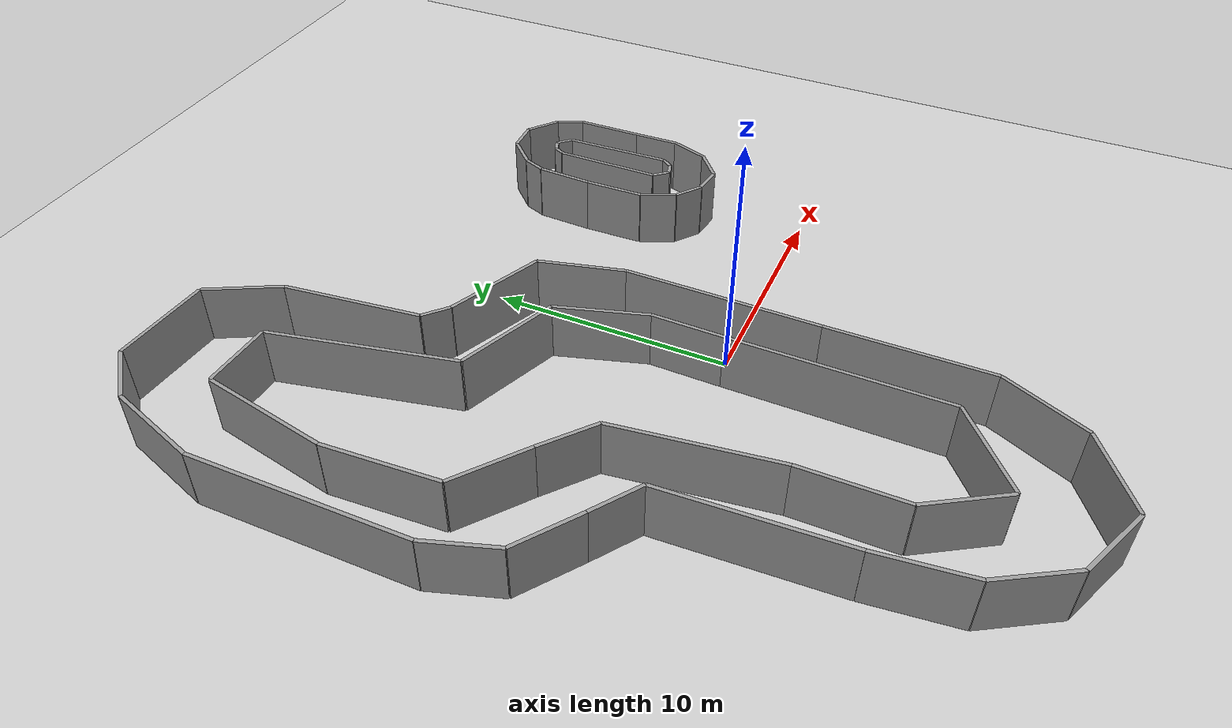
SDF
<sdf version="1.6">
 <world name="default">
  <model name="ground_plane">
   <static>1</static>
   <link name="link">
    <collision name="collision">
     <geometry><plane><normal>0 0 1</normal><size>100 100</size></plane></geometry>
     <surface><friction><ode><mu>100</mu><mu2>50</mu2></ode></friction></surface>
    </collision>
    <visual name="visual">
     <cast_shadows>0</cast_shadows>
     <geometry><plane><normal>0 0 1</normal><size>100 100</size></plane></geometry>
     <material>
      <script><uri>file://media/materials/scripts/gazebo.material</uri><name>Gazebo/Grey</name></script>
     </material>
    </visual>
   </link>
  </model>
  <model name="track2">
   <link name="wall_000">
    <collision name="wall_000_Collision">
     <geometry><box><size>4.375392 0.15 2.5</size></box></geometry>
     <pose>0 0 1.25 0 -0 0</pose>
    </collision>
    <visual name="wall_000_Visual">
     <pose>0 0 1.25 0 -0 0</pose>
     <geometry><box><size>4.375392 0.15 2.5</size></box></geometry>
     <material>
      <script><uri>file://media/materials/scripts/gazebo.material</uri><name>Gazebo/Grey</name></script>
      <ambient>1 1 1 1</ambient>
     </material>
     <meta><layer>0</layer></meta>
    </visual>
    <pose>-1.965100 9.167000 0 0 -0 -0.390624</pose>
   </link>
   <link name="wall_001">
    <collision name="wall_001_Collision">
     <geometry><box><size>1.246207 0.15 2.5</size></box></geometry>
     <pose>0 0 1.25 0 -0 0</pose>
    </collision>
    <visual name="wall_001_Visual">
     <pose>0 0 1.25 0 -0 0</pose>
     <geometry><box><size>1.246207 0.15 2.5</size></box></geometry>
     <material>
      <script><uri>file://media/materials/scripts/gazebo.material</uri><name>Gazebo/Grey</name></script>
      <ambient>1 1 1 1</ambient>
     </material>
     <meta><layer>0</layer></meta>
    </visual>
    <pose>-4.451000 10.417000 0 0 -0 -0.733173</pose>
   </link>
   <link name="wall_002">
    <collision name="wall_002_Collision">
     <geometry><box><size>5.872911 0.15 2.5</size></box></geometry>
     <pose>0 0 1.25 0 -0 0</pose>
    </collision>
    <visual name="wall_002_Visual">
     <pose>0 0 1.25 0 -0 0</pose>
     <geometry><box><size>5.872911 0.15 2.5</size></box></geometry>
     <material>
      <script><uri>file://media/materials/scripts/gazebo.material</uri><name>Gazebo/Grey</name></script>
      <ambient>1 1 1 1</ambient>
     </material>
     <meta><layer>0</layer></meta>
    </visual>
    <pose>-5.260000 13.750000 0 0 -0 -1.452693</pose>
   </link>
   <link name="wall_003">
    <collision name="wall_003_Collision">
     <geometry><box><size>3.309769 0.15 2.5</size></box></geometry>
     <pose>0 0 1.25 0 -0 0</pose>
    </collision>
    <visual name="wall_003_Visual">
     <pose>0 0 1.25 0 -0 0</pose>
     <geometry><box><size>3.309769 0.15 2.5</size></box></geometry>
     <material>
      <script><uri>file://media/materials/scripts/gazebo.material</uri><name>Gazebo/Grey</name></script>
      <ambient>1 1 1 1</ambient>
     </material>
     <meta><layer>0</layer></meta>
    </visual>
    <pose>-6.387000 18.125000 0 0 -0 -1.079311</pose>
   </link>
   <link name="wall_004">
    <collision name="wall_004_Collision">
     <geometry><box><size>4.169502 0.15 2.5</size></box></geometry>
     <pose>0 0 1.25 0 -0 0</pose>
    </collision>
    <visual name="wall_004_Visual">
     <pose>0 0 1.25 0 -0 0</pose>
     <geometry><box><size>4.169502 0.15 2.5</size></box></geometry>
     <material>
      <script><uri>file://media/materials/scripts/gazebo.material</uri><name>Gazebo/Grey</name></script>
      <ambient>1 1 1 1</ambient>
     </material>
     <meta><layer>0</layer></meta>
    </visual>
    <pose>-9.249000 19.709000 0 0 -0 -0.059995</pose>
   </link>
   <link name="wall_005">
    <collision name="wall_005_Collision">
     <geometry><box><size>2.490928 0.15 2.5</size></box></geometry>
     <pose>0 0 1.25 0 -0 0</pose>
    </collision>
    <visual name="wall_005_Visual">
     <pose>0 0 1.25 0 -0 0</pose>
     <geometry><box><size>2.490928 0.15 2.5</size></box></geometry>
     <material>
      <script><uri>file://media/materials/scripts/gazebo.material</uri><name>Gazebo/Grey</name></script>
      <ambient>1 1 1 1</ambient>
     </material>
     <meta><layer>0</layer></meta>
    </visual>
    <pose>-12.255000 19.000000 0 0 -0 0.733710</pose>
   </link>
   <link name="wall_006">
    <collision name="wall_006_Collision">
     <geometry><box><size>4.116790 0.15 2.5</size></box></geometry>
     <pose>0 0 1.25 0 -0 0</pose>
    </collision>
    <visual name="wall_006_Visual">
     <pose>0 0 1.25 0 -0 0</pose>
     <geometry><box><size>4.116790 0.15 2.5</size></box></geometry>
     <material>
      <script><uri>file://media/materials/scripts/gazebo.material</uri><name>Gazebo/Grey</name></script>
      <ambient>1 1 1 1</ambient>
     </material>
     <meta><layer>0</layer></meta>
    </visual>
    <pose>-13.815000 16.208000 0 0 -0 1.257188</pose>
   </link>
   <link name="wall_007">
    <collision name="wall_007_Collision">
     <geometry><box><size>9.000174 0.15 2.5</size></box></geometry>
     <pose>0 0 1.25 0 -0 0</pose>
    </collision>
    <visual name="wall_007_Visual">
     <pose>0 0 1.25 0 -0 0</pose>
     <geometry><box><size>9.000174 0.15 2.5</size></box></geometry>
     <material>
      <script><uri>file://media/materials/scripts/gazebo.material</uri><name>Gazebo/Grey</name></script>
      <ambient>1 1 1 1</ambient>
     </material>
     <meta><layer>0</layer></meta>
    </visual>
    <pose>-14.422000 9.750000 0 0 -0 1.577018</pose>
   </link>
   <link name="wall_008">
    <collision name="wall_008_Collision">
     <geometry><box><size>2.901719 0.15 2.5</size></box></geometry>
     <pose>0 0 1.25 0 -0 0</pose>
    </collision>
    <visual name="wall_008_Visual">
     <pose>0 0 1.25 0 -0 0</pose>
     <geometry><box><size>2.901719 0.15 2.5</size></box></geometry>
     <material>
      <script><uri>file://media/materials/scripts/gazebo.material</uri><name>Gazebo/Grey</name></script>
      <ambient>1 1 1 1</ambient>
     </material>
     <meta><layer>0</layer></meta>
    </visual>
    <pose>-13.931000 3.875000 0 0 -0 1.895598</pose>
   </link>
   <link name="wall_009">
    <collision name="wall_009_Collision">
     <geometry><box><size>2.897319 0.15 2.5</size></box></geometry>
     <pose>0 0 1.25 0 -0 0</pose>
    </collision>
    <visual name="wall_009_Visual">
     <pose>0 0 1.25 0 -0 0</pose>
     <geometry><box><size>2.897319 0.15 2.5</size></box></geometry>
     <material>
      <script><uri>file://media/materials/scripts/gazebo.material</uri><name>Gazebo/Grey</name></script>
      <ambient>1 1 1 1</ambient>
     </material>
     <meta><layer>0</layer></meta>
    </visual>
    <pose>-12.283000 1.666700 0 0 -0 2.528718</pose>
   </link>
   <link name="wall_010">
    <collision name="wall_010_Collision">
     <geometry><box><size>2.232711 0.15 2.5</size></box></geometry>
     <pose>0 0 1.25 0 -0 0</pose>
    </collision>
    <visual name="wall_010_Visual">
     <pose>0 0 1.25 0 -0 0</pose>
     <geometry><box><size>2.232711 0.15 2.5</size></box></geometry>
     <material>
      <script><uri>file://media/materials/scripts/gazebo.material</uri><name>Gazebo/Grey</name></script>
      <ambient>1 1 1 1</ambient>
     </material>
     <meta><layer>0</layer></meta>
    </visual>
    <pose>-10.173000 0.208400 0 0 -0 2.547379</pose>
   </link>
   <link name="wall_011">
    <collision name="wall_011_Collision">
     <geometry><box><size>7.257652 0.15 2.5</size></box></geometry>
     <pose>0 0 1.25 0 -0 0</pose>
    </collision>
    <visual name="wall_011_Visual">
     <pose>0 0 1.25 0 -0 0</pose>
     <geometry><box><size>7.257652 0.15 2.5</size></box></geometry>
     <material>
      <script><uri>file://media/materials/scripts/gazebo.material</uri><name>Gazebo/Grey</name></script>
      <ambient>1 1 1 1</ambient>
     </material>
     <meta><layer>0</layer></meta>
    </visual>
    <pose>-9.075000 -4.041300 0 0 -0 1.618488</pose>
   </link>
   <link name="wall_012">
    <collision name="wall_012_Collision">
     <geometry><box><size>3.606698 0.15 2.5</size></box></geometry>
     <pose>0 0 1.25 0 -0 0</pose>
    </collision>
    <visual name="wall_012_Visual">
     <pose>0 0 1.25 0 -0 0</pose>
     <geometry><box><size>3.606698 0.15 2.5</size></box></geometry>
     <material>
      <script><uri>file://media/materials/scripts/gazebo.material</uri><name>Gazebo/Grey</name></script>
      <ambient>1 1 1 1</ambient>
     </material>
     <meta><layer>0</layer></meta>
    </visual>
    <pose>-8.700000 -9.458000 0 0 -0 1.683046</pose>
   </link>
   <link name="wall_013">
    <collision name="wall_013_Collision">
     <geometry><box><size>3.221519 0.15 2.5</size></box></geometry>
     <pose>0 0 1.25 0 -0 0</pose>
    </collision>
    <visual name="wall_013_Visual">
     <pose>0 0 1.25 0 -0 0</pose>
     <geometry><box><size>3.221519 0.15 2.5</size></box></geometry>
     <material>
      <script><uri>file://media/materials/scripts/gazebo.material</uri><name>Gazebo/Grey</name></script>
      <ambient>1 1 1 1</ambient>
     </material>
     <meta><layer>0</layer></meta>
    </visual>
    <pose>-7.659000 -12.625000 0 0 -0 2.118669</pose>
   </link>
   <link name="wall_014">
    <collision name="wall_014_Collision">
     <geometry><box><size>3.286879 0.15 2.5</size></box></geometry>
     <pose>0 0 1.25 0 -0 0</pose>
    </collision>
    <visual name="wall_014_Visual">
     <pose>0 0 1.25 0 -0 0</pose>
     <geometry><box><size>3.286879 0.15 2.5</size></box></geometry>
     <material>
      <script><uri>file://media/materials/scripts/gazebo.material</uri><name>Gazebo/Grey</name></script>
      <ambient>1 1 1 1</ambient>
     </material>
     <meta><layer>0</layer></meta>
    </visual>
    <pose>-5.318000 -14.667000 0 0 -0 2.723677</pose>
   </link>
   <link name="wall_015">
    <collision name="wall_015_Collision">
     <geometry><box><size>3.664438 0.15 2.5</size></box></geometry>
     <pose>0 0 1.25 0 -0 0</pose>
    </collision>
    <visual name="wall_015_Visual">
     <pose>0 0 1.25 0 -0 0</pose>
     <geometry><box><size>3.664438 0.15 2.5</size></box></geometry>
     <material>
      <script><uri>file://media/materials/scripts/gazebo.material</uri><name>Gazebo/Grey</name></script>
      <ambient>1 1 1 1</ambient>
     </material>
     <meta><layer>0</layer></meta>
    </visual>
    <pose>-2.254800 -14.375000 0 0 -0 -2.590746</pose>
   </link>
   <link name="wall_016">
    <collision name="wall_016_Collision">
     <geometry><box><size>3.704247 0.15 2.5</size></box></geometry>
     <pose>0 0 1.25 0 -0 0</pose>
    </collision>
    <visual name="wall_016_Visual">
     <pose>0 0 1.25 0 -0 0</pose>
     <geometry><box><size>3.704247 0.15 2.5</size></box></geometry>
     <material>
      <script><uri>file://media/materials/scripts/gazebo.material</uri><name>Gazebo/Grey</name></script>
      <ambient>1 1 1 1</ambient>
     </material>
     <meta><layer>0</layer></meta>
    </visual>
    <pose>0.115600 -11.750000 0 0 -0 -2.022950</pose>
   </link>
   <link name="wall_017">
    <collision name="wall_017_Collision">
     <geometry><box><size>6.668000 0.15 2.5</size></box></geometry>
     <pose>0 0 1.25 0 -0 0</pose>
    </collision>
    <visual name="wall_017_Visual">
     <pose>0 0 1.25 0 -0 0</pose>
     <geometry><box><size>6.668000 0.15 2.5</size></box></geometry>
     <material>
      <script><uri>file://media/materials/scripts/gazebo.material</uri><name>Gazebo/Grey</name></script>
      <ambient>1 1 1 1</ambient>
     </material>
     <meta><layer>0</layer></meta>
    </visual>
    <pose>0.924800 -6.750000 0 0 -0 -1.570796</pose>
   </link>
   <link name="wall_018">
    <collision name="wall_018_Collision">
     <geometry><box><size>8.166205 0.15 2.5</size></box></geometry>
     <pose>0 0 1.25 0 -0 0</pose>
    </collision>
    <visual name="wall_018_Visual">
     <pose>0 0 1.25 0 -0 0</pose>
     <geometry><box><size>8.166205 0.15 2.5</size></box></geometry>
     <material>
      <script><uri>file://media/materials/scripts/gazebo.material</uri><name>Gazebo/Grey</name></script>
      <ambient>1 1 1 1</ambient>
     </material>
     <meta><layer>0</layer></meta>
    </visual>
    <pose>0.953700 0.667000 0 0 -0 -1.577874</pose>
   </link>
   <link name="wall_019">
    <collision name="wall_019_Collision">
     <geometry><box><size>3.701393 0.15 2.5</size></box></geometry>
     <pose>0 0 1.25 0 -0 0</pose>
    </collision>
    <visual name="wall_019_Visual">
     <pose>0 0 1.25 0 -0 0</pose>
     <geometry><box><size>3.701393 0.15 2.5</size></box></geometry>
     <material>
      <script><uri>file://media/materials/scripts/gazebo.material</uri><name>Gazebo/Grey</name></script>
      <ambient>1 1 1 1</ambient>
     </material>
     <meta><layer>0</layer></meta>
    </visual>
    <pose>0.520200 6.542000 0 0 -0 -1.318269</pose>
   </link>
   <link name="wall_020">
    <collision name="wall_020_Collision">
     <geometry><box><size>4.507489 0.15 2.5</size></box></geometry>
     <pose>0 0 1.25 0 -0 0</pose>
    </collision>
    <visual name="wall_020_Visual">
     <pose>0 0 1.25 0 -0 0</pose>
     <geometry><box><size>4.507489 0.15 2.5</size></box></geometry>
     <material>
      <script><uri>file://media/materials/scripts/gazebo.material</uri><name>Gazebo/Grey</name></script>
      <ambient>1 1 1 1</ambient>
     </material>
     <meta><layer>0</layer></meta>
    </visual>
    <pose>-4.422000 7.292000 0 0 -0 -0.359082</pose>
   </link>
   <link name="wall_021">
    <collision name="wall_021_Collision">
     <geometry><box><size>7.847072 0.15 2.5</size></box></geometry>
     <pose>0 0 1.25 0 -0 0</pose>
    </collision>
    <visual name="wall_021_Visual">
     <pose>0 0 1.25 0 -0 0</pose>
     <geometry><box><size>7.847072 0.15 2.5</size></box></geometry>
     <material>
      <script><uri>file://media/materials/scripts/gazebo.material</uri><name>Gazebo/Grey</name></script>
      <ambient>1 1 1 1</ambient>
     </material>
     <meta><layer>0</layer></meta>
    </visual>
    <pose>-7.370000 11.917000 0 0 -0 -1.355555</pose>
   </link>
   <link name="wall_022">
    <collision name="wall_022_Collision">
     <geometry><box><size>2.949197 0.15 2.5</size></box></geometry>
     <pose>0 0 1.25 0 -0 0</pose>
    </collision>
    <visual name="wall_022_Visual">
     <pose>0 0 1.25 0 -0 0</pose>
     <geometry><box><size>2.949197 0.15 2.5</size></box></geometry>
     <material>
      <script><uri>file://media/materials/scripts/gazebo.material</uri><name>Gazebo/Grey</name></script>
      <ambient>1 1 1 1</ambient>
     </material>
     <meta><layer>0</layer></meta>
    </visual>
    <pose>-9.682000 15.792000 0 0 -0 -0.028486</pose>
   </link>
   <link name="wall_023">
    <collision name="wall_023_Collision">
     <geometry><box><size>5.516913 0.15 2.5</size></box></geometry>
     <pose>0 0 1.25 0 -0 0</pose>
    </collision>
    <visual name="wall_023_Visual">
     <pose>0 0 1.25 0 -0 0</pose>
     <geometry><box><size>5.516913 0.15 2.5</size></box></geometry>
     <material>
      <script><uri>file://media/materials/scripts/gazebo.material</uri><name>Gazebo/Grey</name></script>
      <ambient>1 1 1 1</ambient>
     </material>
     <meta><layer>0</layer></meta>
    </visual>
    <pose>-11.676000 13.125000 0 0 -0 1.381150</pose>
   </link>
   <link name="wall_024">
    <collision name="wall_024_Collision">
     <geometry><box><size>4.758723 0.15 2.5</size></box></geometry>
     <pose>0 0 1.25 0 -0 0</pose>
    </collision>
    <visual name="wall_024_Visual">
     <pose>0 0 1.25 0 -0 0</pose>
     <geometry><box><size>4.758723 0.15 2.5</size></box></geometry>
     <material>
      <script><uri>file://media/materials/scripts/gazebo.material</uri><name>Gazebo/Grey</name></script>
      <ambient>1 1 1 1</ambient>
     </material>
     <meta><layer>0</layer></meta>
    </visual>
    <pose>-12.052000 8.041000 0 0 -0 1.631354</pose>
   </link>
   <link name="wall_025">
    <collision name="wall_025_Collision">
     <geometry><box><size>3.328002 0.15 2.5</size></box></geometry>
     <pose>0 0 1.25 0 -0 0</pose>
    </collision>
    <visual name="wall_025_Visual">
     <pose>0 0 1.25 0 -0 0</pose>
     <geometry><box><size>3.328002 0.15 2.5</size></box></geometry>
     <material>
      <script><uri>file://media/materials/scripts/gazebo.material</uri><name>Gazebo/Grey</name></script>
      <ambient>1 1 1 1</ambient>
     </material>
     <meta><layer>0</layer></meta>
    </visual>
    <pose>-10.578000 4.666000 0 0 -0 2.496890</pose>
   </link>
   <link name="wall_026">
    <collision name="wall_026_Collision">
     <geometry><box><size>2.521908 0.15 2.5</size></box></geometry>
     <pose>0 0 1.25 0 -0 0</pose>
    </collision>
    <visual name="wall_026_Visual">
     <pose>0 0 1.25 0 -0 0</pose>
     <geometry><box><size>2.521908 0.15 2.5</size></box></geometry>
     <material>
      <script><uri>file://media/materials/scripts/gazebo.material</uri><name>Gazebo/Grey</name></script>
      <ambient>1 1 1 1</ambient>
     </material>
     <meta><layer>0</layer></meta>
    </visual>
    <pose>-8.266000 2.875000 0 0 -0 2.463508</pose>
   </link>
   <link name="wall_027">
    <collision name="wall_027_Collision">
     <geometry><box><size>6.640970 0.15 2.5</size></box></geometry>
     <pose>0 0 1.25 0 -0 0</pose>
    </collision>
    <visual name="wall_027_Visual">
     <pose>0 0 1.25 0 -0 0</pose>
     <geometry><box><size>6.640970 0.15 2.5</size></box></geometry>
     <material>
      <script><uri>file://media/materials/scripts/gazebo.material</uri><name>Gazebo/Grey</name></script>
      <ambient>1 1 1 1</ambient>
     </material>
     <meta><layer>0</layer></meta>
    </visual>
    <pose>-6.850000 -1.208000 0 0 -0 1.701875</pose>
   </link>
   <link name="wall_028">
    <collision name="wall_028_Collision">
     <geometry><box><size>4.166000 0.15 2.5</size></box></geometry>
     <pose>0 0 1.25 0 -0 0</pose>
    </collision>
    <visual name="wall_028_Visual">
     <pose>0 0 1.25 0 -0 0</pose>
     <geometry><box><size>4.166000 0.15 2.5</size></box></geometry>
     <material>
      <script><uri>file://media/materials/scripts/gazebo.material</uri><name>Gazebo/Grey</name></script>
      <ambient>1 1 1 1</ambient>
     </material>
     <meta><layer>0</layer></meta>
    </visual>
    <pose>-6.416000 -6.583000 0 0 -0 1.570796</pose>
   </link>
   <link name="wall_029">
    <collision name="wall_029_Collision">
     <geometry><box><size>3.455029 0.15 2.5</size></box></geometry>
     <pose>0 0 1.25 0 -0 0</pose>
    </collision>
    <visual name="wall_029_Visual">
     <pose>0 0 1.25 0 -0 0</pose>
     <geometry><box><size>3.455029 0.15 2.5</size></box></geometry>
     <material>
      <script><uri>file://media/materials/scripts/gazebo.material</uri><name>Gazebo/Grey</name></script>
      <ambient>1 1 1 1</ambient>
     </material>
     <meta><layer>0</layer></meta>
    </visual>
    <pose>-5.491000 -10.125000 0 0 -0 2.135838</pose>
   </link>
   <link name="wall_030">
    <collision name="wall_030_Collision">
     <geometry><box><size>4.135586 0.15 2.5</size></box></geometry>
     <pose>0 0 1.25 0 -0 0</pose>
    </collision>
    <visual name="wall_030_Visual">
     <pose>0 0 1.25 0 -0 0</pose>
     <geometry><box><size>4.135586 0.15 2.5</size></box></geometry>
     <material>
      <script><uri>file://media/materials/scripts/gazebo.material</uri><name>Gazebo/Grey</name></script>
      <ambient>1 1 1 1</ambient>
     </material>
     <meta><layer>0</layer></meta>
    </visual>
    <pose>-2.918800 -10.334000 0 0 -0 -2.492443</pose>
   </link>
   <link name="wall_031">
    <collision name="wall_031_Collision">
     <geometry><box><size>8.834189 0.15 2.5</size></box></geometry>
     <pose>0 0 1.25 0 -0 0</pose>
    </collision>
    <visual name="wall_031_Visual">
     <pose>0 0 1.25 0 -0 0</pose>
     <geometry><box><size>8.834189 0.15 2.5</size></box></geometry>
     <material>
      <script><uri>file://media/materials/scripts/gazebo.material</uri><name>Gazebo/Grey</name></script>
      <ambient>1 1 1 1</ambient>
     </material>
     <meta><layer>0</layer></meta>
    </visual>
    <pose>-1.242700 -4.667000 0 0 -0 -1.577339</pose>
   </link>
   <link name="wall_032">
    <collision name="wall_032_Collision">
     <geometry><box><size>3.000557 0.15 2.5</size></box></geometry>
     <pose>0 0 1.25 0 -0 0</pose>
    </collision>
    <visual name="wall_032_Visual">
     <pose>0 0 1.25 0 -0 0</pose>
     <geometry><box><size>3.000557 0.15 2.5</size></box></geometry>
     <material>
      <script><uri>file://media/materials/scripts/gazebo.material</uri><name>Gazebo/Grey</name></script>
      <ambient>1 1 1 1</ambient>
     </material>
     <meta><layer>0</layer></meta>
    </visual>
    <pose>-1.184900 1.250000 0 0 -0 -1.590061</pose>
   </link>
   <link name="wall_033">
    <collision name="wall_033_Collision">
     <geometry><box><size>3.924135 0.15 2.5</size></box></geometry>
     <pose>0 0 1.25 0 -0 0</pose>
    </collision>
    <visual name="wall_033_Visual">
     <pose>0 0 1.25 0 -0 0</pose>
     <geometry><box><size>3.924135 0.15 2.5</size></box></geometry>
     <material>
      <script><uri>file://media/materials/scripts/gazebo.material</uri><name>Gazebo/Grey</name></script>
      <ambient>1 1 1 1</ambient>
     </material>
     <meta><layer>0</layer></meta>
    </visual>
    <pose>-1.734000 4.625000 0 0 -0 -1.271773</pose>
   </link>
   <link name="wall_034">
    <collision name="wall_034_Collision">
     <geometry><box><size>1.195634 0.15 2.5</size></box></geometry>
     <pose>0 0 1.25 0 -0 0</pose>
    </collision>
    <visual name="wall_034_Visual">
     <pose>0 0 1.25 0 -0 0</pose>
     <geometry><box><size>1.195634 0.15 2.5</size></box></geometry>
     <material>
      <script><uri>file://media/materials/scripts/gazebo.material</uri><name>Gazebo/Grey</name></script>
      <ambient>1 1 1 1</ambient>
     </material>
     <meta><layer>0</layer></meta>
    </visual>
    <pose>10.586740 11.912500 0 0 -0 -1.157576</pose>
   </link>
   <link name="wall_035">
    <collision name="wall_035_Collision">
     <geometry><box><size>1.548632 0.15 2.5</size></box></geometry>
     <pose>0 0 1.25 0 -0 0</pose>
    </collision>
    <visual name="wall_035_Visual">
     <pose>0 0 1.25 0 -0 0</pose>
     <geometry><box><size>1.548632 0.15 2.5</size></box></geometry>
     <material>
      <script><uri>file://media/materials/scripts/gazebo.material</uri><name>Gazebo/Grey</name></script>
      <ambient>1 1 1 1</ambient>
     </material>
     <meta><layer>0</layer></meta>
    </visual>
    <pose>9.733240 12.932500 0 0 -0 -0.656333</pose>
   </link>
   <link name="wall_036">
    <collision name="wall_036_Collision">
     <geometry><box><size>1.362576 0.15 2.5</size></box></geometry>
     <pose>0 0 1.25 0 -0 0</pose>
    </collision>
    <visual name="wall_036_Visual">
     <pose>0 0 1.25 0 -0 0</pose>
     <geometry><box><size>1.362576 0.15 2.5</size></box></geometry>
     <material>
      <script><uri>file://media/materials/scripts/gazebo.material</uri><name>Gazebo/Grey</name></script>
      <ambient>1 1 1 1</ambient>
     </material>
     <meta><layer>0</layer></meta>
    </visual>
    <pose>8.440000 13.360000 0 0 -0 0.066100</pose>
   </link>
   <link name="wall_037">
    <collision name="wall_037_Collision">
     <geometry><box><size>1.558364 0.15 2.5</size></box></geometry>
     <pose>0 0 1.25 0 -0 0</pose>
    </collision>
    <visual name="wall_037_Visual">
     <pose>0 0 1.25 0 -0 0</pose>
     <geometry><box><size>1.558364 0.15 2.5</size></box></geometry>
     <material>
      <script><uri>file://media/materials/scripts/gazebo.material</uri><name>Gazebo/Grey</name></script>
      <ambient>1 1 1 1</ambient>
     </material>
     <meta><layer>0</layer></meta>
    </visual>
    <pose>7.213300 12.760000 0 0 -0 0.792749</pose>
   </link>
   <link name="wall_038">
    <collision name="wall_038_Collision">
     <geometry><box><size>0.983273 0.15 2.5</size></box></geometry>
     <pose>0 0 1.25 0 -0 0</pose>
    </collision>
    <visual name="wall_038_Visual">
     <pose>0 0 1.25 0 -0 0</pose>
     <geometry><box><size>0.983273 0.15 2.5</size></box></geometry>
     <material>
      <script><uri>file://media/materials/scripts/gazebo.material</uri><name>Gazebo/Grey</name></script>
      <ambient>1 1 1 1</ambient>
     </material>
     <meta><layer>0</layer></meta>
    </visual>
    <pose>6.486400 11.747500 0 0 -0 1.195956</pose>
   </link>
   <link name="wall_039">
    <collision name="wall_039_Collision">
     <geometry><box><size>2.372378 0.15 2.5</size></box></geometry>
     <pose>0 0 1.25 0 -0 0</pose>
    </collision>
    <visual name="wall_039_Visual">
     <pose>0 0 1.25 0 -0 0</pose>
     <geometry><box><size>2.372378 0.15 2.5</size></box></geometry>
     <material>
      <script><uri>file://media/materials/scripts/gazebo.material</uri><name>Gazebo/Grey</name></script>
      <ambient>1 1 1 1</ambient>
     </material>
     <meta><layer>0</layer></meta>
    </visual>
    <pose>6.253300 10.105000 0 0 -0 1.526016</pose>
   </link>
   <link name="wall_040">
    <collision name="wall_040_Collision">
     <geometry><box><size>2.535562 0.15 2.5</size></box></geometry>
     <pose>0 0 1.25 0 -0 0</pose>
    </collision>
    <visual name="wall_040_Visual">
     <pose>0 0 1.25 0 -0 0</pose>
     <geometry><box><size>2.535562 0.15 2.5</size></box></geometry>
     <material>
      <script><uri>file://media/materials/scripts/gazebo.material</uri><name>Gazebo/Grey</name></script>
      <ambient>1 1 1 1</ambient>
     </material>
     <meta><layer>0</layer></meta>
    </visual>
    <pose>6.226900 7.652500 0 0 -0 1.591858</pose>
   </link>
   <link name="wall_041">
    <collision name="wall_041_Collision">
     <geometry><box><size>1.561958 0.15 2.5</size></box></geometry>
     <pose>0 0 1.25 0 -0 0</pose>
    </collision>
    <visual name="wall_041_Visual">
     <pose>0 0 1.25 0 -0 0</pose>
     <geometry><box><size>1.561958 0.15 2.5</size></box></geometry>
     <material>
      <script><uri>file://media/materials/scripts/gazebo.material</uri><name>Gazebo/Grey</name></script>
      <ambient>1 1 1 1</ambient>
     </material>
     <meta><layer>0</layer></meta>
    </visual>
    <pose>6.573400 5.672500 0 0 -0 1.992687</pose>
   </link>
   <link name="wall_042">
    <collision name="wall_042_Collision">
     <geometry><box><size>1.280286 0.15 2.5</size></box></geometry>
     <pose>0 0 1.25 0 -0 0</pose>
    </collision>
    <visual name="wall_042_Visual">
     <pose>0 0 1.25 0 -0 0</pose>
     <geometry><box><size>1.280286 0.15 2.5</size></box></geometry>
     <material>
      <script><uri>file://media/materials/scripts/gazebo.material</uri><name>Gazebo/Grey</name></script>
      <ambient>1 1 1 1</ambient>
     </material>
     <meta><layer>0</layer></meta>
    </visual>
    <pose>7.406500 4.577500 0 0 -0 2.501185</pose>
   </link>
   <link name="wall_043">
    <collision name="wall_043_Collision">
     <geometry><box><size>1.236135 0.15 2.5</size></box></geometry>
     <pose>0 0 1.25 0 -0 0</pose>
    </collision>
    <visual name="wall_043_Visual">
     <pose>0 0 1.25 0 -0 0</pose>
     <geometry><box><size>1.236135 0.15 2.5</size></box></geometry>
     <material>
      <script><uri>file://media/materials/scripts/gazebo.material</uri><name>Gazebo/Grey</name></script>
      <ambient>1 1 1 1</ambient>
     </material>
     <meta><layer>0</layer></meta>
    </visual>
    <pose>8.533300 4.120000 0 0 -0 3.019947</pose>
   </link>
   <link name="wall_044">
    <collision name="wall_044_Collision">
     <geometry><box><size>1.536656 0.15 2.5</size></box></geometry>
     <pose>0 0 1.25 0 -0 0</pose>
    </collision>
    <visual name="wall_044_Visual">
     <pose>0 0 1.25 0 -0 0</pose>
     <geometry><box><size>1.536656 0.15 2.5</size></box></geometry>
     <material>
      <script><uri>file://media/materials/scripts/gazebo.material</uri><name>Gazebo/Grey</name></script>
      <ambient>1 1 1 1</ambient>
     </material>
     <meta><layer>0</layer></meta>
    </visual>
    <pose>9.746740 4.525000 0 0 -0 -2.466803</pose>
   </link>
   <link name="wall_045">
    <collision name="wall_045_Collision">
     <geometry><box><size>1.685708 0.15 2.5</size></box></geometry>
     <pose>0 0 1.25 0 -0 0</pose>
    </collision>
    <visual name="wall_045_Visual">
     <pose>0 0 1.25 0 -0 0</pose>
     <geometry><box><size>1.685708 0.15 2.5</size></box></geometry>
     <material>
      <script><uri>file://media/materials/scripts/gazebo.material</uri><name>Gazebo/Grey</name></script>
      <ambient>1 1 1 1</ambient>
     </material>
     <meta><layer>0</layer></meta>
    </visual>
    <pose>10.626640 5.800000 0 0 -0 -1.909386</pose>
   </link>
   <link name="wall_046">
    <collision name="wall_046_Collision">
     <geometry><box><size>1.935418 0.15 2.5</size></box></geometry>
     <pose>0 0 1.25 0 -0 0</pose>
    </collision>
    <visual name="wall_046_Visual">
     <pose>0 0 1.25 0 -0 0</pose>
     <geometry><box><size>1.935418 0.15 2.5</size></box></geometry>
     <material>
      <script><uri>file://media/materials/scripts/gazebo.material</uri><name>Gazebo/Grey</name></script>
      <ambient>1 1 1 1</ambient>
     </material>
     <meta><layer>0</layer></meta>
    </visual>
    <pose>10.886500 7.562500 0 0 -0 -1.550024</pose>
   </link>
   <link name="wall_047">
    <collision name="wall_047_Collision">
     <geometry><box><size>2.835277 0.15 2.5</size></box></geometry>
     <pose>0 0 1.25 0 -0 0</pose>
    </collision>
    <visual name="wall_047_Visual">
     <pose>0 0 1.25 0 -0 0</pose>
     <geometry><box><size>2.835277 0.15 2.5</size></box></geometry>
     <material>
      <script><uri>file://media/materials/scripts/gazebo.material</uri><name>Gazebo/Grey</name></script>
      <ambient>1 1 1 1</ambient>
     </material>
     <meta><layer>0</layer></meta>
    </visual>
    <pose>10.846600 9.947500 0 0 -0 -1.556829</pose>
   </link>
   <link name="wall_048">
    <collision name="wall_048_Collision">
     <geometry><box><size>0.729845 0.15 2.5</size></box></geometry>
     <pose>0 0 1.25 0 -0 0</pose>
    </collision>
    <visual name="wall_048_Visual">
     <pose>0 0 1.25 0 -0 0</pose>
     <geometry><box><size>0.729845 0.15 2.5</size></box></geometry>
     <material>
      <script><uri>file://media/materials/scripts/gazebo.material</uri><name>Gazebo/Grey</name></script>
      <ambient>1 1 1 1</ambient>
     </material>
     <meta><layer>0</layer></meta>
    </visual>
    <pose>8.880100 11.372500 0 0 -0 -0.802838</pose>
   </link>
   <link name="wall_049">
    <collision name="wall_049_Collision">
     <geometry><box><size>0.512640 0.15 2.5</size></box></geometry>
     <pose>0 0 1.25 0 -0 0</pose>
    </collision>
    <visual name="wall_049_Visual">
     <pose>0 0 1.25 0 -0 0</pose>
     <geometry><box><size>0.512640 0.15 2.5</size></box></geometry>
     <material>
      <script><uri>file://media/materials/scripts/gazebo.material</uri><name>Gazebo/Grey</name></script>
      <ambient>1 1 1 1</ambient>
     </material>
     <meta><layer>0</layer></meta>
    </visual>
    <pose>8.386600 11.545000 0 0 -0 0.358771</pose>
   </link>
   <link name="wall_050">
    <collision name="wall_050_Collision">
     <geometry><box><size>0.490574 0.15 2.5</size></box></geometry>
     <pose>0 0 1.25 0 -0 0</pose>
    </collision>
    <visual name="wall_050_Visual">
     <pose>0 0 1.25 0 -0 0</pose>
     <geometry><box><size>0.490574 0.15 2.5</size></box></geometry>
     <material>
      <script><uri>file://media/materials/scripts/gazebo.material</uri><name>Gazebo/Grey</name></script>
      <ambient>1 1 1 1</ambient>
     </material>
     <meta><layer>0</layer></meta>
    </visual>
    <pose>8.033200 11.237500 0 0 -0 1.090192</pose>
   </link>
   <link name="wall_051">
    <collision name="wall_051_Collision">
     <geometry><box><size>4.515021 0.15 2.5</size></box></geometry>
     <pose>0 0 1.25 0 -0 0</pose>
    </collision>
    <visual name="wall_051_Visual">
     <pose>0 0 1.25 0 -0 0</pose>
     <geometry><box><size>4.515021 0.15 2.5</size></box></geometry>
     <material>
      <script><uri>file://media/materials/scripts/gazebo.material</uri><name>Gazebo/Grey</name></script>
      <ambient>1 1 1 1</ambient>
     </material>
     <meta><layer>0</layer></meta>
    </visual>
    <pose>7.926700 8.762500 0 0 -0 1.573853</pose>
   </link>
   <link name="wall_052">
    <collision name="wall_052_Collision">
     <geometry><box><size>0.762457 0.15 2.5</size></box></geometry>
     <pose>0 0 1.25 0 -0 0</pose>
    </collision>
    <visual name="wall_052_Visual">
     <pose>0 0 1.25 0 -0 0</pose>
     <geometry><box><size>0.762457 0.15 2.5</size></box></geometry>
     <material>
      <script><uri>file://media/materials/scripts/gazebo.material</uri><name>Gazebo/Grey</name></script>
      <ambient>1 1 1 1</ambient>
     </material>
     <meta><layer>0</layer></meta>
    </visual>
    <pose>8.186800 6.220000 0 0 -0 2.297177</pose>
   </link>
   <link name="wall_053">
    <collision name="wall_053_Collision">
     <geometry><box><size>0.554090 0.15 2.5</size></box></geometry>
     <pose>0 0 1.25 0 -0 0</pose>
    </collision>
    <visual name="wall_053_Visual">
     <pose>0 0 1.25 0 -0 0</pose>
     <geometry><box><size>0.554090 0.15 2.5</size></box></geometry>
     <material>
      <script><uri>file://media/materials/scripts/gazebo.material</uri><name>Gazebo/Grey</name></script>
      <ambient>1 1 1 1</ambient>
     </material>
     <meta><layer>0</layer></meta>
    </visual>
    <pose>8.706700 6.010000 0 0 -0 -2.867458</pose>
   </link>
   <link name="wall_054">
    <collision name="wall_054_Collision">
     <geometry><box><size>0.552062 0.15 2.5</size></box></geometry>
     <pose>0 0 1.25 0 -0 0</pose>
    </collision>
    <visual name="wall_054_Visual">
     <pose>0 0 1.25 0 -0 0</pose>
     <geometry><box><size>0.552062 0.15 2.5</size></box></geometry>
     <material>
      <script><uri>file://media/materials/scripts/gazebo.material</uri><name>Gazebo/Grey</name></script>
      <ambient>1 1 1 1</ambient>
     </material>
     <meta><layer>0</layer></meta>
    </visual>
    <pose>9.133300 6.310000 0 0 -0 -2.188645</pose>
   </link>
   <link name="wall_055">
    <collision name="wall_055_Collision">
     <geometry><box><size>4.577783 0.15 2.5</size></box></geometry>
     <pose>0 0 1.25 0 -0 0</pose>
    </collision>
    <visual name="wall_055_Visual">
     <pose>0 0 1.25 0 -0 0</pose>
     <geometry><box><size>4.577783 0.15 2.5</size></box></geometry>
     <material>
      <script><uri>file://media/materials/scripts/gazebo.material</uri><name>Gazebo/Grey</name></script>
      <ambient>1 1 1 1</ambient>
     </material>
     <meta><layer>0</layer></meta>
    </visual>
    <pose>9.213400 8.822500 0 0 -0 -1.535925</pose>
   </link>
   <static>1</static>
  </model>
 </world>
</sdf>
